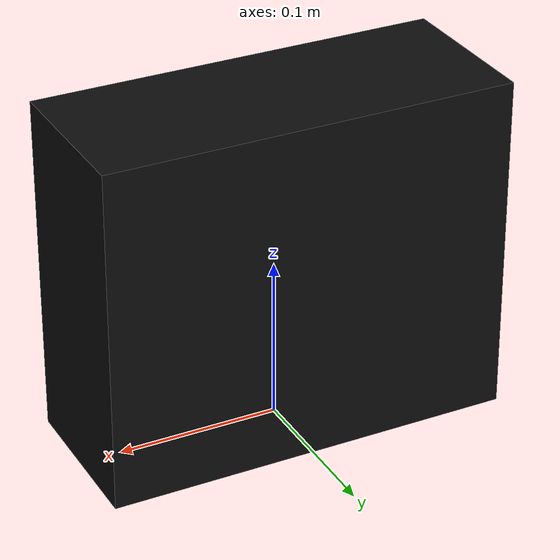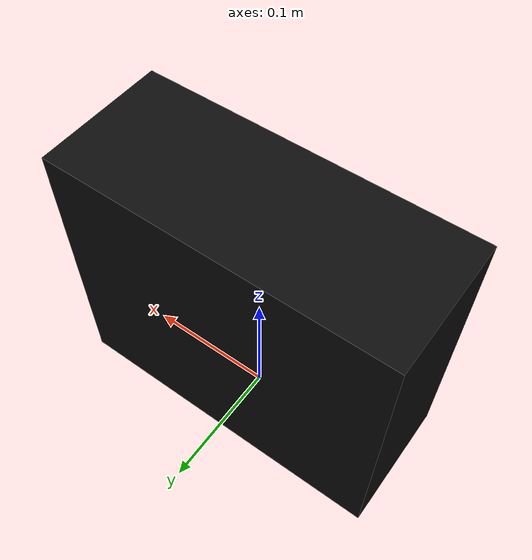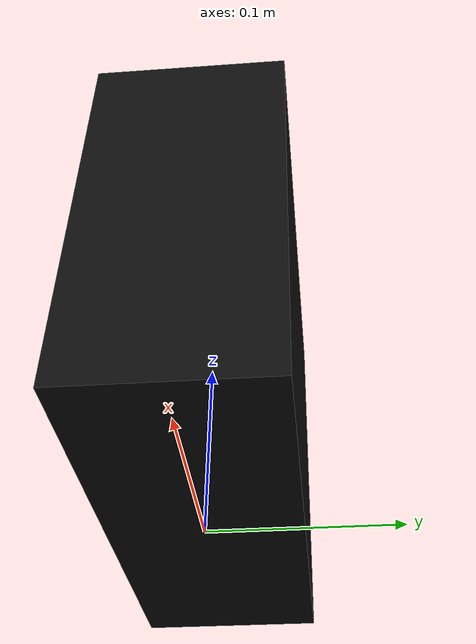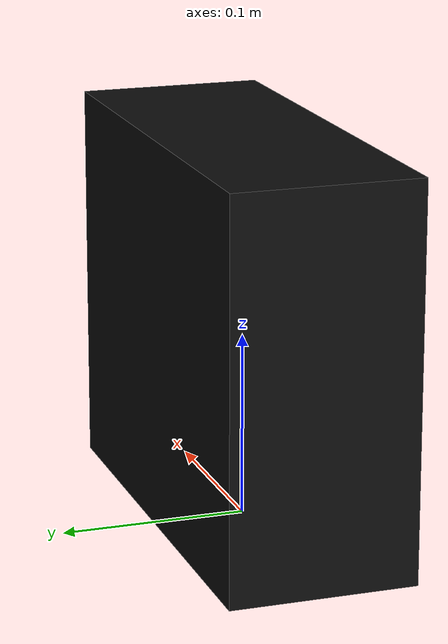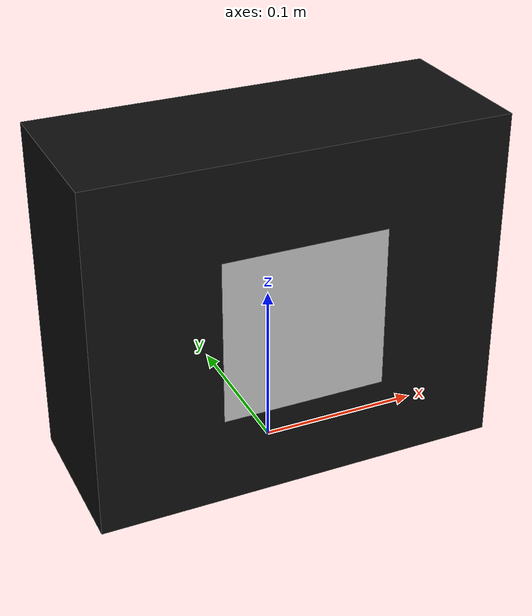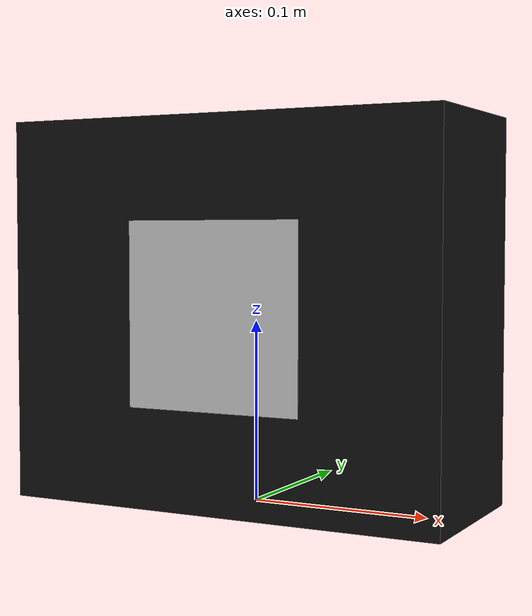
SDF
<?xml version="1.0"?>
<sdf version="1.6">
  <model name="station_b_box">
    <static>true</static>

    <link name="body">

      <!-- Box dimensions:
           length x depth x height = 0.25 x 0.10 x 0.21 m
           centered at z = 0.105 so it sits on the ground
      -->

      <collision name="box_collision">
        <pose>0 0 0.105 0 0 0</pose>
        <geometry>
          <box>
            <size>0.25 0.10 0.21</size>
          </box>
        </geometry>
      </collision>

      <visual name="box_visual">
        <pose>0 0 0.105 0 0 0</pose>
        <geometry>
          <box>
            <size>0.25 0.10 0.21</size>
          </box>
        </geometry>
        <material>
          <ambient>0.05 0.05 0.05 1</ambient>
          <diffuse>0.05 0.05 0.05 1</diffuse>
        </material>
      </visual>

      <!-- QR code on the long front face.
           Face used: X-Z face at y = -0.050 m
           QR size: 10 cm x 10 cm
      -->
      <visual name="qr_visual">
        <pose>0 -0.051 0.105 1.5708 0 0</pose>
        <geometry>
          <plane>
            <normal>0 0 1</normal>
            <size>0.10 0.10</size>
          </plane>
        </geometry>
        <material>
          <script>
            <uri>model://station_b_box/materials/scripts</uri>
            <uri>model://station_b_box/materials/textures</uri>
            <name>StationB/QR</name>
          </script>
        </material>
      </visual>

    </link>
  </model>
</sdf>
